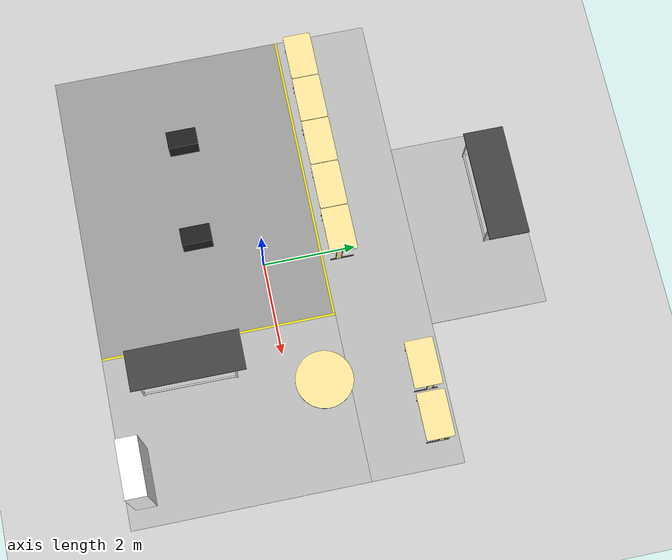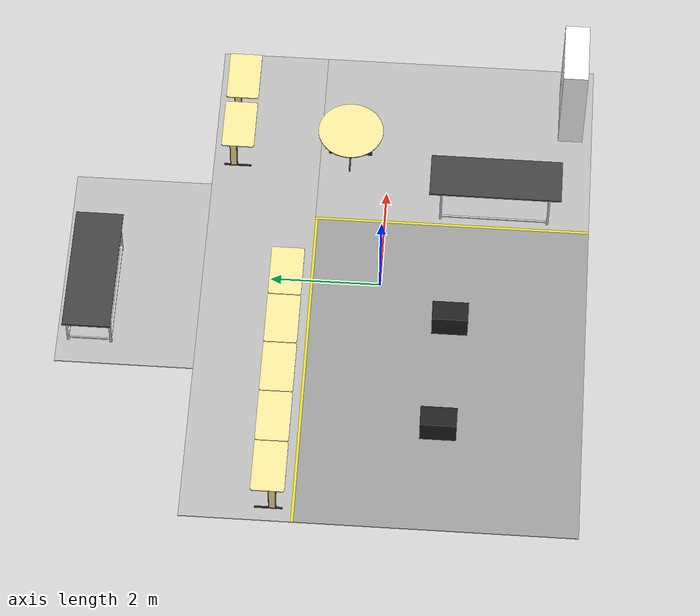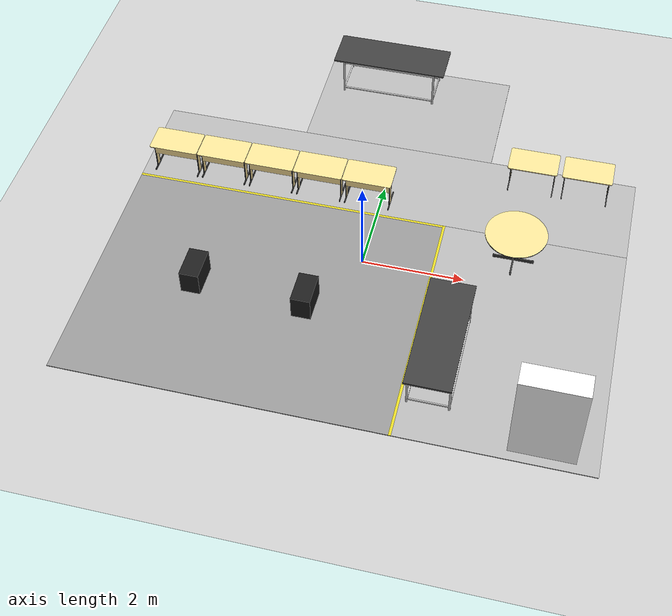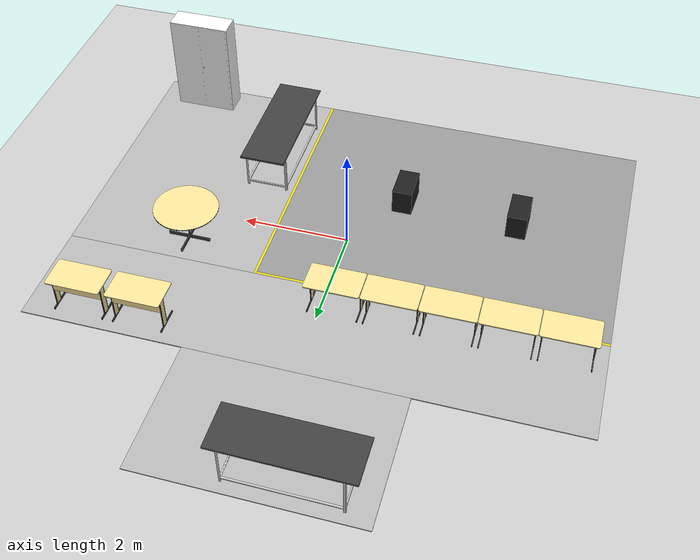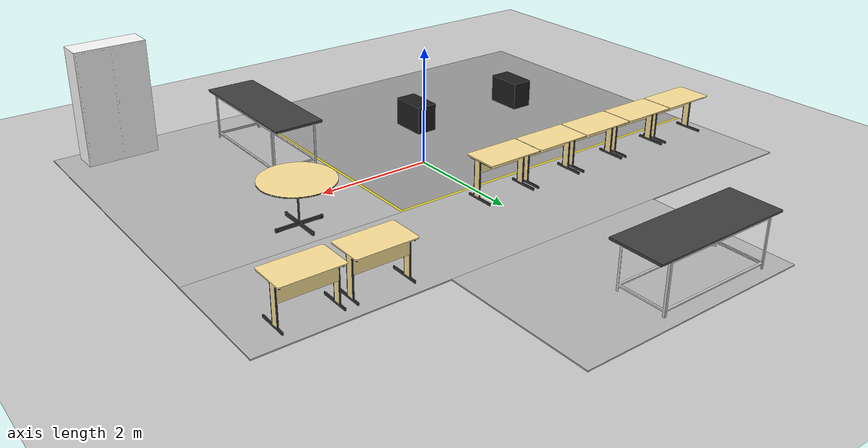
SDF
<sdf version="1.6">
 <world name="default">
  <light name="sun" type="directional">
   <cast_shadows>0</cast_shadows>
   <pose>0 0 10 0 -0 0</pose>
   <diffuse>0.8 0.8 0.8 1</diffuse>
   <specular>0.1 0.1 0.1 1</specular>
   <attenuation>
    <range>1000</range>
    <constant>0.9</constant>
    <linear>0.01</linear>
    <quadratic>0.001</quadratic>
   </attenuation>
   <direction>-0.5 0.5 -1</direction>
  </light>
  <model name="ground_plane">
   <static>1</static>
   <link name="link">
    <collision name="collision">
     <geometry><plane><normal>0 0 1</normal><size>100 100</size></plane></geometry>
     <surface><friction><ode><mu>100</mu><mu2>50</mu2></ode></friction></surface>
    </collision>
    <visual name="visual">
     <cast_shadows>0</cast_shadows>
     <geometry><plane><normal>0 0 1</normal><size>100 100</size></plane></geometry>
     <material>
      <script><uri>file://media/materials/scripts/gazebo.material</uri><name>Gazebo/Grey</name></script>
     </material>
    </visual>
   </link>
  </model>
  <gravity>0 0 -9.8</gravity>
  <magnetic_field>6e-06 2.3e-05 -4.2e-05</magnetic_field>
  <atmosphere type="adiabatic"/>
  <physics name="default_physics" default="0" type="ode">
   <max_step_size>0.01</max_step_size>
   <real_time_factor>1</real_time_factor>
   <real_time_update_rate>100</real_time_update_rate>
  </physics>
  <scene><ambient>0.4 0.4 0.4 1</ambient><background>0.7 0.7 0.7 1</background><shadows>0</shadows></scene>
  <spherical_coordinates>
   <surface_model>EARTH_WGS84</surface_model>
   <latitude_deg>0</latitude_deg>
   <longitude_deg>0</longitude_deg>
   <elevation>0</elevation>
   <heading_deg>0</heading_deg>
  </spherical_coordinates>
  <model name="lar_floor">
   <pose>0 -0.25 0 0 -0 0</pose>
   <include><uri>model://lar_floor</uri><name>floor</name><static>1</static></include>
  </model>
  <model name="lar_shelf">
   <pose>4.0 -3.35 0 0 0 1.57068</pose>
   <include><uri>model://lar_shelf</uri><name>shelf</name><static>1</static></include>
  </model>
  <model name="lar_table_great_0">
   <pose>1.9 -2.0 0 0 0 0</pose>
   <include><uri>model://lar_table_great</uri><name>great_table_0</name><static>1</static></include>
  </model>
  <model name="lar_table_great_1">
   <pose>-0.55 5.15 0 0 -0 1.5708</pose>
   <include><uri>model://lar_table_great</uri><name>great_table_1</name><static>1</static></include>
  </model>
  <model name="lar_table_pc_0">
   <pose>-4.30 1.68 0 0 0 0</pose>
   <include><uri>model://lar_table_pc</uri><name>pc_table_0</name><static>1</static></include>
  </model>
  <model name="lar_table_pc_1">
   <pose>-3.29 1.68 0 0 0 0</pose>
   <include><uri>model://lar_table_pc</uri><name>pc_table_1</name><static>1</static></include>
  </model>
  <model name="lar_table_pc_2">
   <pose>-2.28 1.68 0 0 -0 0</pose>
   <include><uri>model://lar_table_pc</uri><name>pc_table_2</name><static>1</static></include>
  </model>
  <model name="lar_table_pc_3">
   <pose>-1.27 1.68 0 0 -0 0</pose>
   <include><uri>model://lar_table_pc</uri><name>pc_table_3</name><static>1</static></include>
  </model>
  <model name="lar_table_pc_4">
   <pose>-0.26 1.68 0 0 -0 0</pose>
   <include><uri>model://lar_table_pc</uri><name>pc_table_4</name><static>1</static></include>
  </model>
  <model name="lar_table_pc_5">
   <pose>4 2.8 0 0 0 -3.14159</pose>
   <include><uri>model://lar_table_pc</uri><name>pc_table_5</name><static>1</static></include>
  </model>
  <model name="lar_table_pc_6">
   <pose>2.9 2.8 0 0 -0 3.14159</pose>
   <include><uri>model://lar_table_pc</uri><name>pc_table_6</name><static>1</static></include>
  </model>
  <model name="lar_table_circular">
   <pose>2.84873 0.721151 0 0 -0 0</pose>
   <include><uri>model://lar_table_circular</uri><name>circular_table</name><static>1</static></include>
  </model>
  <model name="box_0">
   <pose>-0.80 -1.3 0 0 -0 1.5708</pose>
   <include><uri>model://box</uri><name>box_0</name><static>1</static></include>
  </model>
  <model name="box_1">
   <pose>-3.0 -1.2 0 0 -0 1.5708</pose>
   <include><uri>model://box</uri><name>box_1</name><static>1</static></include>
  </model>
 </world>
</sdf>

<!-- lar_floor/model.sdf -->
<sdf version="1.6">
    <model name="lar_floor">
        <link name='floor'>
        <pose frame=''>0 0 0 0 0 0</pose>
        <inertial>
            <mass>1000</mass>
            <inertia>
            <ixx>0.166667</ixx>
            <ixy>0</ixy>
            <ixz>0</ixz>
            <iyy>0.166667</iyy>
            <iyz>0</iyz>
            <izz>0.166667</izz>
            </inertia>
            <pose frame=''>0 0 0 0 -0 0</pose>
        </inertial>
        <gravity>1</gravity>
        <self_collide>0</self_collide>
        <kinematic>0</kinematic>
        <visual name='visual_1'>
            <pose frame=''>3.2 -0.985 0.01 0 -0 0</pose>
            <geometry>
                <box>
                    <size>3.6 5.03 0.02</size>
                </box>
            </geometry>
            <material>
              <script>
                <uri> model://lar_floor/materials/scripts/lar_floor.material</uri>
                <name> lar_floor/visual_1 </name>
              </script>
            </material>
            <cast_shadows>0</cast_shadows>
            <transparency>0</transparency>
        </visual>
        <visual name='visual_2'>
            <pose frame=''>0 4.75 0.01 0 -0 0</pose>
            <geometry>
                <box>
                    <size>4 2.5 0.02</size>
                </box>
            </geometry>
            <material>
              <script>
                <uri> model://lar_floor/materials/scripts/lar_floor.material</uri>
                <name> lar_floor/visual_2 </name>
              </script>
            </material>
            <cast_shadows>0</cast_shadows>
            <transparency>0</transparency>
        </visual>
        <visual name='visual_3'>
            <pose frame=''>-1.825 -1.01 0.01 0 -0 0</pose>
            <geometry>
                <box>
                    <size>6.35 4.98 0.02</size>
                </box>
            </geometry>
            <material>
              <script>
                <uri>file://media/materials/scripts/gazebo.material</uri>
                <name>Gazebo/Grey</name>
              </script>
            </material>
            <cast_shadows>0</cast_shadows>
            <transparency>0</transparency>
        </visual>
        <visual name='visual_4'>
            <pose frame=''>1.375 -0.985 0.01 0 -0 0</pose>
            <geometry>
                <box>
                    <size>0.05 5.03 0.02</size>
                </box>
            </geometry>
            <material>
              <script>
                <uri>file://media/materials/scripts/gazebo.material</uri>
                <name>Gazebo/DarkYellow  </name>
              </script>
            </material>
            <cast_shadows>0</cast_shadows>
            <transparency>0</transparency>
        </visual>
        <visual name='visual_5'>
            <pose frame=''>-1.825 1.505 0.01 0 -0 0</pose>
            <geometry>
                <box>
                    <size>6.35 0.05 0.02</size>
                </box>
            </geometry>
            <material>
              <script>
                <uri>file://media/materials/scripts/gazebo.material</uri>
                <name>Gazebo/DarkYellow  </name>
              </script>
            </material>
            <cast_shadows>0</cast_shadows>
            <transparency>0</transparency>
        </visual>
        <visual name='visual_6'>
            <pose frame=''>0 2.515 0.01 0 -0 0</pose>
            <geometry>
                <box>
                    <size>10 1.97 0.02</size>
                </box>
            </geometry>
            <material>
              <script>
                <uri> model://lar_floor/materials/scripts/lar_floor.material</uri>
                <name> lar_floor/visual_6 </name>
              </script>
            </material>
            <cast_shadows>0</cast_shadows>
            <transparency>0</transparency>
        </visual>
        <collision name='collision_1'>
            <laser_retro>0</laser_retro>
            <max_contacts>10</max_contacts>
            <pose frame=''>0 0 0.01 0 -0 0</pose>
            <geometry>
                <box>
                    <size>10 7.0 0.02</size>
                </box>
            </geometry>
            <surface>
            <friction>
                <ode>
                <mu>1</mu>
                <mu2>1</mu2>
                <fdir1>0 0 0</fdir1>
                <slip1>0</slip1>
                <slip2>0</slip2>
                </ode>
                <torsional>
                    <coefficient>1</coefficient>
                    <patch_radius>0</patch_radius>
                    <surface_radius>0</surface_radius>
                    <use_patch_radius>1</use_patch_radius>
                    <ode>
                        <slip>0</slip>
                    </ode>
                </torsional>
            </friction>
            <bounce>
                <restitution_coefficient>0</restitution_coefficient>
                <threshold>1e+06</threshold>
            </bounce>
            <contact>
                <collide_without_contact>0</collide_without_contact>
                <collide_without_contact_bitmask>1</collide_without_contact_bitmask>
                <collide_bitmask>1</collide_bitmask>
                <ode>
                    <soft_cfm>0</soft_cfm>
                    <soft_erp>0.2</soft_erp>
                    <kp>1e+13</kp>
                    <kd>1</kd>
                    <max_vel>0.01</max_vel>
                    <min_depth>0</min_depth>
                </ode>
                <bullet>
                    <split_impulse>1</split_impulse>
                    <split_impulse_penetration_threshold>-0.01</split_impulse_penetration_threshold>
                    <soft_cfm>0</soft_cfm>
                    <soft_erp>0.2</soft_erp>
                    <kp>1e+13</kp>
                    <kd>1</kd>
                </bullet>
            </contact>
            </surface>
        </collision>
        <collision name='collision_2'>
            <laser_retro>0</laser_retro>
            <max_contacts>10</max_contacts>
            <pose frame=''>0 4.75 0.01 0 -0 0</pose>
            <geometry>
                <box>
                    <size>4 2.5 0.02</size>
                </box>
            </geometry>
            <surface>
            <friction>
                <ode>
                <mu>1</mu>
                <mu2>1</mu2>
                <fdir1>0 0 0</fdir1>
                <slip1>0</slip1>
                <slip2>0</slip2>
                </ode>
                <torsional>
                    <coefficient>1</coefficient>
                    <patch_radius>0</patch_radius>
                    <surface_radius>0</surface_radius>
                    <use_patch_radius>1</use_patch_radius>
                    <ode>
                        <slip>0</slip>
                    </ode>
                </torsional>
            </friction>
            <bounce>
                <restitution_coefficient>0</restitution_coefficient>
                <threshold>1e+06</threshold>
            </bounce>
            <contact>
                <collide_without_contact>0</collide_without_contact>
                <collide_without_contact_bitmask>1</collide_without_contact_bitmask>
                <collide_bitmask>1</collide_bitmask>
                <ode>
                    <soft_cfm>0</soft_cfm>
                    <soft_erp>0.2</soft_erp>
                    <kp>1e+13</kp>
                    <kd>1</kd>
                    <max_vel>0.01</max_vel>
                    <min_depth>0</min_depth>
                </ode>
                <bullet>
                    <split_impulse>1</split_impulse>
                    <split_impulse_penetration_threshold>-0.01</split_impulse_penetration_threshold>
                    <soft_cfm>0</soft_cfm>
                    <soft_erp>0.2</soft_erp>
                    <kp>1e+13</kp>
                    <kd>1</kd>
                </bullet>
            </contact>
            </surface>
        </collision>
        </link>
        <static>1</static>
        <allow_auto_disable>1</allow_auto_disable>
    </model>
</sdf>

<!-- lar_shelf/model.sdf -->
<sdf version='1.6'>
  <model name='lar_shelf'>
    <link name='shelf'>
      <pose frame=''>0 0 1.01 0 -0 0</pose>
      <inertial>
        <inertia>
          <ixx>1</ixx>
          <ixy>0</ixy>
          <ixz>0</ixz>
          <iyy>1</iyy>
          <iyz>0</iyz>
          <izz>1</izz>
        </inertia>
        <mass>20</mass>
        <pose frame=''>0 0 0 0 -0 0</pose>
      </inertial>
      <self_collide>0</self_collide>
      <kinematic>0</kinematic>
      <gravity>1</gravity>
      <visual name='visual'>
        <geometry>
          <mesh>
            <uri>model://lar_shelf/meshes/lar_shelf.dae</uri>
          </mesh>
        </geometry>
        <pose frame=''>0 0 0 0 -0 0</pose>
        <cast_shadows>0</cast_shadows>
        <transparency>0</transparency>
        <material>
          <lighting>1</lighting>
          <ambient>1 1 1 1</ambient>
          <diffuse>1 1 1 1</diffuse>
          <specular>1 1 1 1</specular>
          <emissive>0 0 0 1</emissive>
          <shader type='vertex'>
            <normal_map>__default__</normal_map>
          </shader>
        </material>
      </visual>
      <collision name='collisions'>
        <laser_retro>0</laser_retro>
        <max_contacts>10</max_contacts>
        <pose frame=''>0 0 0 0 -0 0</pose>
        <geometry>
          <box>
            <size>0.454 1.2 1.98</size>
          </box>
        </geometry>
        <surface>
          <friction>
            <ode>
              <mu>1</mu>
              <mu2>1</mu2>
              <fdir1>0 0 0</fdir1>
              <slip1>0</slip1>
              <slip2>0</slip2>
            </ode>
            <torsional>
              <coefficient>1</coefficient>
              <patch_radius>0</patch_radius>
              <surface_radius>0</surface_radius>
              <use_patch_radius>1</use_patch_radius>
              <ode>
                <slip>0</slip>
              </ode>
            </torsional>
          </friction>
          <bounce>
            <restitution_coefficient>0</restitution_coefficient>
            <threshold>1e+06</threshold>
          </bounce>
          <contact>
            <collide_without_contact>0</collide_without_contact>
            <collide_without_contact_bitmask>1</collide_without_contact_bitmask>
            <collide_bitmask>1</collide_bitmask>
            <ode>
              <soft_cfm>0</soft_cfm>
              <soft_erp>0.2</soft_erp>
              <kp>1e+13</kp>
              <kd>1</kd>
              <max_vel>0.01</max_vel>
              <min_depth>0</min_depth>
            </ode>
            <bullet>
              <split_impulse>1</split_impulse>
              <split_impulse_penetration_threshold>-0.01</split_impulse_penetration_threshold>
              <soft_cfm>0</soft_cfm>
              <soft_erp>0.2</soft_erp>
              <kp>1e+13</kp>
              <kd>1</kd>
            </bullet>
          </contact>
        </surface>
      </collision>
    </link>
    <static>0</static>
    <allow_auto_disable>1</allow_auto_disable>
  </model>
</sdf>

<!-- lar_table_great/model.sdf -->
<sdf version='1.6'>
  <model name='lar_table_great'>
    <link name='great_table'>
      <pose frame=''>0 0 0.445 0 -0 0</pose>
      <inertial>
        <inertia>
          <ixx>1</ixx>
          <ixy>0</ixy>
          <ixz>0</ixz>
          <iyy>1</iyy>
          <iyz>0</iyz>
          <izz>1</izz>
        </inertia>
        <mass>25</mass>
        <pose frame=''>0 0 0 0 -0 0</pose>
      </inertial>
      <self_collide>0</self_collide>
      <kinematic>0</kinematic>
      <gravity>1</gravity>
      <visual name='visual'>
        <geometry>
          <mesh>
            <uri>model://lar_table_great/meshes/lar_table_great.dae</uri>
          </mesh>
        </geometry>
        <pose frame=''>0 0 0 0 -0 0</pose>
        <cast_shadows>1</cast_shadows>
        <transparency>0</transparency>
        <material>
          <shader type='vertex'>
            <normal_map>__default__</normal_map>
          </shader>
        </material>
      </visual>
      <collision name='collisions'>
        <laser_retro>0</laser_retro>
        <max_contacts>10</max_contacts>
        <pose frame=''>0 0 0 0 -0 0</pose>
        <geometry>
          <mesh>
            <uri>model://lar_table_great/meshes/lar_table_great.dae</uri>
          </mesh>
        </geometry>
        <surface>
          <friction>
            <ode>
              <mu>1</mu>
              <mu2>1</mu2>
              <fdir1>0 0 0</fdir1>
              <slip1>0</slip1>
              <slip2>0</slip2>
            </ode>
            <torsional>
              <coefficient>1</coefficient>
              <patch_radius>0</patch_radius>
              <surface_radius>0</surface_radius>
              <use_patch_radius>1</use_patch_radius>
              <ode>
                <slip>0</slip>
              </ode>
            </torsional>
          </friction>
          <bounce>
            <restitution_coefficient>0</restitution_coefficient>
            <threshold>1e+06</threshold>
          </bounce>
          <contact>
            <collide_without_contact>0</collide_without_contact>
            <collide_without_contact_bitmask>1</collide_without_contact_bitmask>
            <collide_bitmask>1</collide_bitmask>
            <ode>
              <soft_cfm>0</soft_cfm>
              <soft_erp>0.2</soft_erp>
              <kp>1e+13</kp>
              <kd>1</kd>
              <max_vel>0.01</max_vel>
              <min_depth>0</min_depth>
            </ode>
            <bullet>
              <split_impulse>1</split_impulse>
              <split_impulse_penetration_threshold>-0.01</split_impulse_penetration_threshold>
              <soft_cfm>0</soft_cfm>
              <soft_erp>0.2</soft_erp>
              <kp>1e+13</kp>
              <kd>1</kd>
            </bullet>
          </contact>
        </surface>
      </collision>
    </link>
    <static>0</static>
    <allow_auto_disable>1</allow_auto_disable>
  </model>
</sdf>

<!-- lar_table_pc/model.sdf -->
<sdf version='1.6'>
  <model name='lar_table_pc'>
    <link name='pc_table'>
      <pose frame=''>0 0 0.370 0 -0 0</pose>
      <inertial>
        <inertia>
          <ixx>1</ixx>
          <ixy>0</ixy>
          <ixz>0</ixz>
          <iyy>1</iyy>
          <iyz>0</iyz>
          <izz>1</izz>
        </inertia>
        <mass>12</mass>
        <pose frame=''>0 0 0 0 -0 0</pose>
      </inertial>
      <self_collide>0</self_collide>
      <kinematic>0</kinematic>
      <gravity>1</gravity>
      <visual name='visual'>
        <geometry>
          <mesh>
            <uri>model://lar_table_pc/meshes/lar_table_pc.dae</uri>
          </mesh>
        </geometry>
        <pose frame=''>0 0 0 0 -0 0</pose>
        <cast_shadows>0</cast_shadows>
        <transparency>0</transparency>
        <material>
          <shader type='vertex'>
            <normal_map>__default__</normal_map>
          </shader>
        </material>
      </visual>
      <collision name='collisions'>
        <laser_retro>0</laser_retro>
        <max_contacts>10</max_contacts>
        <pose frame=''>0 0 0 0 -0 0</pose>
        <geometry>
          <mesh>
            <uri>model://lar_table_pc/meshes/lar_table_pc.dae</uri>
          </mesh>
        </geometry>
        <surface>
          <friction>
            <ode>
              <mu>1</mu>
              <mu2>1</mu2>
              <fdir1>0 0 0</fdir1>
              <slip1>0</slip1>
              <slip2>0</slip2>
            </ode>
            <torsional>
              <coefficient>1</coefficient>
              <patch_radius>0</patch_radius>
              <surface_radius>0</surface_radius>
              <use_patch_radius>1</use_patch_radius>
              <ode>
                <slip>0</slip>
              </ode>
            </torsional>
          </friction>
          <bounce>
            <restitution_coefficient>0</restitution_coefficient>
            <threshold>1e+06</threshold>
          </bounce>
          <contact>
            <collide_without_contact>0</collide_without_contact>
            <collide_without_contact_bitmask>1</collide_without_contact_bitmask>
            <collide_bitmask>1</collide_bitmask>
            <ode>
              <soft_cfm>0</soft_cfm>
              <soft_erp>0.2</soft_erp>
              <kp>1e+13</kp>
              <kd>1</kd>
              <max_vel>0.01</max_vel>
              <min_depth>0</min_depth>
            </ode>
            <bullet>
              <split_impulse>1</split_impulse>
              <split_impulse_penetration_threshold>-0.01</split_impulse_penetration_threshold>
              <soft_cfm>0</soft_cfm>
              <soft_erp>0.2</soft_erp>
              <kp>1e+13</kp>
              <kd>1</kd>
            </bullet>
          </contact>
        </surface>
      </collision>
    </link>
    <static>0</static>
    <allow_auto_disable>1</allow_auto_disable>
  </model>
</sdf>

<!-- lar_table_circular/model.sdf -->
<sdf version='1.6'>
  <model name='lar_table_circular'>
    <link name='circular_table'>
      <pose frame=''>0 0 0.388 0 -0 0</pose>
      <inertial>
        <inertia>
          <ixx>1</ixx>
          <ixy>0</ixy>
          <ixz>0</ixz>
          <iyy>1</iyy>
          <iyz>0</iyz>
          <izz>1</izz>
        </inertia>
        <mass>5</mass>
        <pose frame=''>0 0 0 0 -0 0</pose>
      </inertial>
      <self_collide>0</self_collide>
      <kinematic>0</kinematic>
      <gravity>1</gravity>
      <visual name='visual'>
        <geometry>
          <mesh>
            <uri>model://lar_table_circular/meshes/lar_table_circular.dae</uri>
          </mesh>
        </geometry>
        <pose frame=''>0 0 0 0 -0 0</pose>
        <cast_shadows>1</cast_shadows>
        <transparency>0</transparency>
        <material>
          <shader type='vertex'>
            <normal_map>__default__</normal_map>
          </shader>
        </material>
      </visual>
      <collision name='collisions'>
        <laser_retro>0</laser_retro>
        <max_contacts>10</max_contacts>
        <pose frame=''>0 0 0 0 -0 0</pose>
        <geometry>
          <mesh>
            <uri>model://lar_table_circular/meshes/lar_table_circular.dae</uri>
          </mesh>
        </geometry>
        <surface>
          <friction>
            <ode>
              <mu>1</mu>
              <mu2>1</mu2>
              <fdir1>0 0 0</fdir1>
              <slip1>0</slip1>
              <slip2>0</slip2>
            </ode>
            <torsional>
              <coefficient>1</coefficient>
              <patch_radius>0</patch_radius>
              <surface_radius>0</surface_radius>
              <use_patch_radius>1</use_patch_radius>
              <ode>
                <slip>0</slip>
              </ode>
            </torsional>
          </friction>
          <bounce>
            <restitution_coefficient>0</restitution_coefficient>
            <threshold>1e+06</threshold>
          </bounce>
          <contact>
            <collide_without_contact>0</collide_without_contact>
            <collide_without_contact_bitmask>1</collide_without_contact_bitmask>
            <collide_bitmask>1</collide_bitmask>
            <ode>
              <soft_cfm>0</soft_cfm>
              <soft_erp>0.2</soft_erp>
              <kp>1e+13</kp>
              <kd>1</kd>
              <max_vel>0.01</max_vel>
              <min_depth>0</min_depth>
            </ode>
            <bullet>
              <split_impulse>1</split_impulse>
              <split_impulse_penetration_threshold>-0.01</split_impulse_penetration_threshold>
              <soft_cfm>0</soft_cfm>
              <soft_erp>0.2</soft_erp>
              <kp>1e+13</kp>
              <kd>1</kd>
            </bullet>
          </contact>
        </surface>
      </collision>
    </link>
    <static>0</static>
    <allow_auto_disable>1</allow_auto_disable>
  </model>
</sdf>

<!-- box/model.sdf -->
<sdf version="1.5">
  <model name="box">
    <static>true</static>
    <link name="link">
      <pose frame=''>0 0 0.28 0 -0 0</pose>
      <collision name="collision">
        <geometry>
          <box>
            <size>0.65 0.38 0.50 </size>
          </box>
        </geometry>
      </collision>
      <visual name="visual">
        <cast_shadows>false</cast_shadows>
        <geometry>
          <box>
            <size>0.65 0.38 0.50 </size>
          </box>
        </geometry>
        <material>
          <script>
            <uri>file://media/materials/scripts/gazebo.material</uri>
            <name>Gazebo/Black</name>
          </script>
        </material>
      </visual>
    </link>
  </model>
</sdf>
